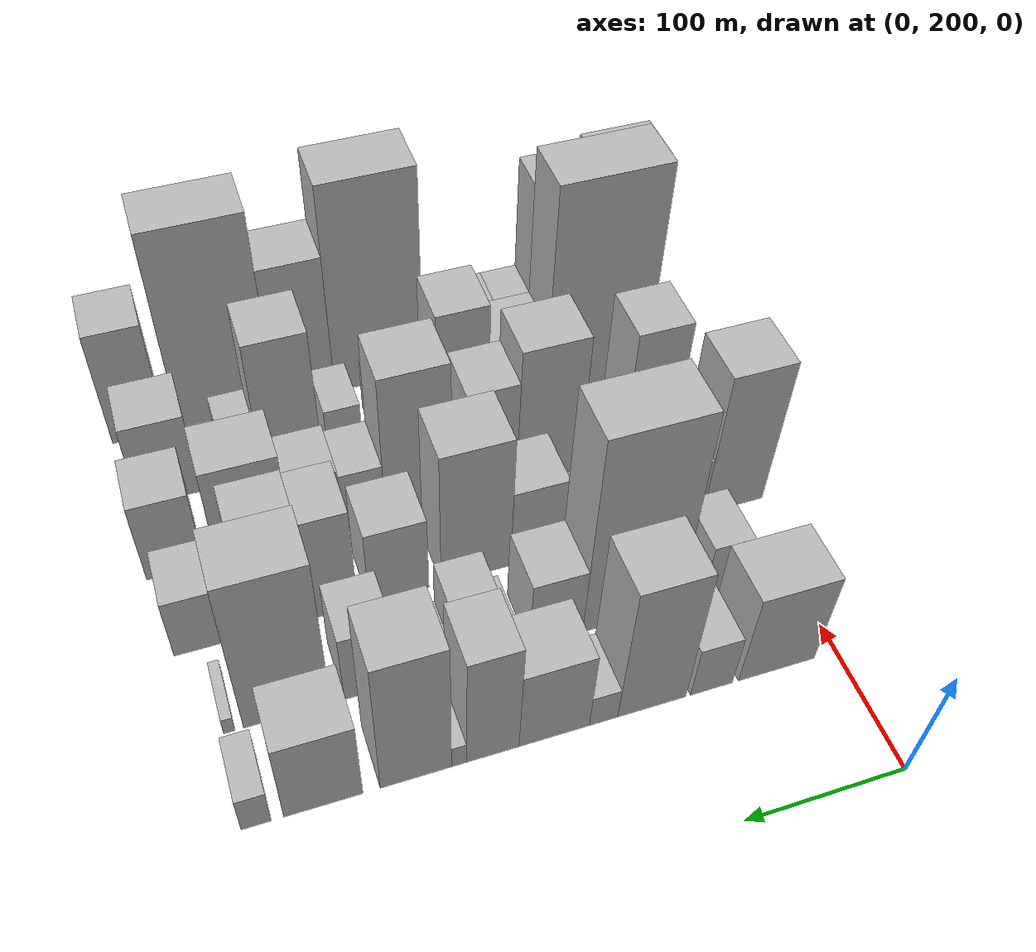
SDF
<sdf version="1.6">
 <world name="default">
  <model name="building_31">
   <static>1</static>
   <pose>100.0000 239.9030 0 0.000000 0.000000 0.000000</pose>
   <link name="link">
    <pose>0 0 42.00 0 0 0</pose>
    <collision name="collision"><geometry><box><size>40.0000 50.0657 84.0000</size></box></geometry></collision>
    <visual name="visual">
     <cast_shadows>0</cast_shadows>
     <geometry><box><size>40.0000 50.0657 84.0000</size></box></geometry>
     <material>
      <script>
       <uri>model://HANNAS_wall/materials/scripts</uri>
       <uri>model://HANNAS_wall/materials/textures</uri>
       <name>vrc/HANNAS_wall</name>
      </script>
     </material>
    </visual>
   </link>
  </model>
  <model name="building_32">
   <static>1</static>
   <pose>100.0000 282.4379 0 0.000000 0.000000 0.000000</pose>
   <link name="link">
    <pose>0 0 24.00 0 0 0</pose>
    <collision name="collision"><geometry><box><size>40.0000 27.0040 48.0000</size></box></geometry></collision>
    <visual name="visual">
     <cast_shadows>0</cast_shadows>
     <geometry><box><size>40.0000 27.0040 48.0000</size></box></geometry>
     <material>
      <script>
       <uri>model://HANNAS_wall/materials/scripts</uri>
       <uri>model://HANNAS_wall/materials/textures</uri>
       <name>vrc/HANNAS_wall</name>
      </script>
     </material>
    </visual>
   </link>
  </model>
  <model name="building_33">
   <static>1</static>
   <pose>100.0000 320.5855 0 0.000000 0.000000 0.000000</pose>
   <link name="link">
    <pose>0 0 63.00 0 0 0</pose>
    <collision name="collision"><geometry><box><size>40.0000 43.2914 126.0000</size></box></geometry></collision>
    <visual name="visual">
     <cast_shadows>0</cast_shadows>
     <geometry><box><size>40.0000 43.2914 126.0000</size></box></geometry>
     <material>
      <script>
       <uri>model://HANNAS_wall/materials/scripts</uri>
       <uri>model://HANNAS_wall/materials/textures</uri>
       <name>vrc/HANNAS_wall</name>
      </script>
     </material>
    </visual>
   </link>
  </model>
  <model name="building_34">
   <static>1</static>
   <pose>100.0000 351.0756 0 0.000000 0.000000 0.000000</pose>
   <link name="link">
    <pose>0 0 15.00 0 0 0</pose>
    <collision name="collision"><geometry><box><size>40.0000 17.6887 30.0000</size></box></geometry></collision>
    <visual name="visual">
     <cast_shadows>0</cast_shadows>
     <geometry><box><size>40.0000 17.6887 30.0000</size></box></geometry>
     <material>
      <script>
       <uri>model://HANNAS_wall/materials/scripts</uri>
       <uri>model://HANNAS_wall/materials/textures</uri>
       <name>vrc/HANNAS_wall</name>
      </script>
     </material>
    </visual>
   </link>
  </model>
  <model name="building_35">
   <static>1</static>
   <pose>100.0000 381.4709 0 0.000000 0.000000 0.000000</pose>
   <link name="link">
    <pose>0 0 37.50 0 0 0</pose>
    <collision name="collision"><geometry><box><size>40.0000 43.1019 75.0000</size></box></geometry></collision>
    <visual name="visual">
     <cast_shadows>0</cast_shadows>
     <geometry><box><size>40.0000 43.1019 75.0000</size></box></geometry>
     <material>
      <script>
       <uri>model://HANNAS_wall/materials/scripts</uri>
       <uri>model://HANNAS_wall/materials/textures</uri>
       <name>vrc/HANNAS_wall</name>
      </script>
     </material>
    </visual>
   </link>
  </model>
  <model name="building_36">
   <static>1</static>
   <pose>100.0000 418.7863 0 0.000000 0.000000 0.000000</pose>
   <link name="link">
    <pose>0 0 52.50 0 0 0</pose>
    <collision name="collision"><geometry><box><size>40.0000 31.5288 105.0000</size></box></geometry></collision>
    <visual name="visual">
     <cast_shadows>0</cast_shadows>
     <geometry><box><size>40.0000 31.5288 105.0000</size></box></geometry>
     <material>
      <script>
       <uri>model://HANNAS_wall/materials/scripts</uri>
       <uri>model://HANNAS_wall/materials/textures</uri>
       <name>vrc/HANNAS_wall</name>
      </script>
     </material>
    </visual>
   </link>
  </model>
  <model name="building_37">
   <static>1</static>
   <pose>100.0000 438.9979 0 0.000000 0.000000 0.000000</pose>
   <link name="link">
    <pose>0 0 10.50 0 0 0</pose>
    <collision name="collision"><geometry><box><size>40.0000 8.8945 21.0000</size></box></geometry></collision>
    <visual name="visual">
     <cast_shadows>0</cast_shadows>
     <geometry><box><size>40.0000 8.8945 21.0000</size></box></geometry>
     <material>
      <script>
       <uri>model://HANNAS_wall/materials/scripts</uri>
       <uri>model://HANNAS_wall/materials/textures</uri>
       <name>vrc/HANNAS_wall</name>
      </script>
     </material>
    </visual>
   </link>
  </model>
  <model name="building_38">
   <static>1</static>
   <pose>100.0000 464.3143 0 0.000000 0.000000 0.000000</pose>
   <link name="link">
    <pose>0 0 63.00 0 0 0</pose>
    <collision name="collision"><geometry><box><size>40.0000 41.7383 126.0000</size></box></geometry></collision>
    <visual name="visual">
     <cast_shadows>0</cast_shadows>
     <geometry><box><size>40.0000 41.7383 126.0000</size></box></geometry>
     <material>
      <script>
       <uri>model://HANNAS_wall/materials/scripts</uri>
       <uri>model://HANNAS_wall/materials/textures</uri>
       <name>vrc/HANNAS_wall</name>
      </script>
     </material>
    </visual>
   </link>
  </model>
  <model name="building_39">
   <static>1</static>
   <pose>100.0000 517.6695 0 0.000000 0.000000 0.000000</pose>
   <link name="link">
    <pose>0 0 37.50 0 0 0</pose>
    <collision name="collision"><geometry><box><size>40.0000 44.9721 75.0000</size></box></geometry></collision>
    <visual name="visual">
     <cast_shadows>0</cast_shadows>
     <geometry><box><size>40.0000 44.9721 75.0000</size></box></geometry>
     <material>
      <script>
       <uri>model://HANNAS_wall/materials/scripts</uri>
       <uri>model://HANNAS_wall/materials/textures</uri>
       <name>vrc/HANNAS_wall</name>
      </script>
     </material>
    </visual>
   </link>
  </model>
  <model name="building_40">
   <static>1</static>
   <pose>100.0000 555.5803 0 0.000000 0.000000 0.000000</pose>
   <link name="link">
    <pose>0 0 16.50 0 0 0</pose>
    <collision name="collision"><geometry><box><size>40.0000 16.8495 33.0000</size></box></geometry></collision>
    <visual name="visual">
     <cast_shadows>0</cast_shadows>
     <geometry><box><size>40.0000 16.8495 33.0000</size></box></geometry>
     <material>
      <script>
       <uri>model://HANNAS_wall/materials/scripts</uri>
       <uri>model://HANNAS_wall/materials/textures</uri>
       <name>vrc/HANNAS_wall</name>
      </script>
     </material>
    </visual>
   </link>
  </model>
  <model name="building_89">
   <static>1</static>
   <pose>160.0000 221.8760 0 0.000000 0.000000 0.000000</pose>
   <link name="link">
    <pose>0 0 9.00 0 0 0</pose>
    <collision name="collision"><geometry><box><size>40.0000 7.3442 18.0000</size></box></geometry></collision>
    <visual name="visual">
     <cast_shadows>0</cast_shadows>
     <geometry><box><size>40.0000 7.3442 18.0000</size></box></geometry>
     <material>
      <script>
       <uri>model://HANNAS_wall/materials/scripts</uri>
       <uri>model://HANNAS_wall/materials/textures</uri>
       <name>vrc/HANNAS_wall</name>
      </script>
     </material>
    </visual>
   </link>
  </model>
  <model name="building_90">
   <static>1</static>
   <pose>160.0000 246.0580 0 0.000000 0.000000 0.000000</pose>
   <link name="link">
    <pose>0 0 25.50 0 0 0</pose>
    <collision name="collision"><geometry><box><size>40.0000 27.0197 51.0000</size></box></geometry></collision>
    <visual name="visual">
     <cast_shadows>0</cast_shadows>
     <geometry><box><size>40.0000 27.0197 51.0000</size></box></geometry>
     <material>
      <script>
       <uri>model://HANNAS_wall/materials/scripts</uri>
       <uri>model://HANNAS_wall/materials/textures</uri>
       <name>vrc/HANNAS_wall</name>
      </script>
     </material>
    </visual>
   </link>
  </model>
  <model name="building_91">
   <static>1</static>
   <pose>160.0000 267.3985 0 0.000000 0.000000 0.000000</pose>
   <link name="link">
    <pose>0 0 9.00 0 0 0</pose>
    <collision name="collision"><geometry><box><size>40.0000 7.6613 18.0000</size></box></geometry></collision>
    <visual name="visual">
     <cast_shadows>0</cast_shadows>
     <geometry><box><size>40.0000 7.6613 18.0000</size></box></geometry>
     <material>
      <script>
       <uri>model://HANNAS_wall/materials/scripts</uri>
       <uri>model://HANNAS_wall/materials/textures</uri>
       <name>vrc/HANNAS_wall</name>
      </script>
     </material>
    </visual>
   </link>
  </model>
  <model name="building_92">
   <static>1</static>
   <pose>160.0000 308.3316 0 0.000000 0.000000 0.000000</pose>
   <link name="link">
    <pose>0 0 90.00 0 0 0</pose>
    <collision name="collision"><geometry><box><size>40.0000 64.2050 180.0000</size></box></geometry></collision>
    <visual name="visual">
     <cast_shadows>0</cast_shadows>
     <geometry><box><size>40.0000 64.2050 180.0000</size></box></geometry>
     <material>
      <script>
       <uri>model://HANNAS_wall/materials/scripts</uri>
       <uri>model://HANNAS_wall/materials/textures</uri>
       <name>vrc/HANNAS_wall</name>
      </script>
     </material>
    </visual>
   </link>
  </model>
  <model name="building_93">
   <static>1</static>
   <pose>160.0000 357.6886 0 0.000000 0.000000 0.000000</pose>
   <link name="link">
    <pose>0 0 31.50 0 0 0</pose>
    <collision name="collision"><geometry><box><size>40.0000 34.5089 63.0000</size></box></geometry></collision>
    <visual name="visual">
     <cast_shadows>0</cast_shadows>
     <geometry><box><size>40.0000 34.5089 63.0000</size></box></geometry>
     <material>
      <script>
       <uri>model://HANNAS_wall/materials/scripts</uri>
       <uri>model://HANNAS_wall/materials/textures</uri>
       <name>vrc/HANNAS_wall</name>
      </script>
     </material>
    </visual>
   </link>
  </model>
  <model name="building_94">
   <static>1</static>
   <pose>160.0000 387.1038 0 0.000000 0.000000 0.000000</pose>
   <link name="link">
    <pose>0 0 12.00 0 0 0</pose>
    <collision name="collision"><geometry><box><size>40.0000 10.3215 24.0000</size></box></geometry></collision>
    <visual name="visual">
     <cast_shadows>0</cast_shadows>
     <geometry><box><size>40.0000 10.3215 24.0000</size></box></geometry>
     <material>
      <script>
       <uri>model://HANNAS_wall/materials/scripts</uri>
       <uri>model://HANNAS_wall/materials/textures</uri>
       <name>vrc/HANNAS_wall</name>
      </script>
     </material>
    </visual>
   </link>
  </model>
  <model name="building_95">
   <static>1</static>
   <pose>160.0000 407.3738 0 0.000000 0.000000 0.000000</pose>
   <link name="link">
    <pose>0 0 27.00 0 0 0</pose>
    <collision name="collision"><geometry><box><size>40.0000 30.2186 54.0000</size></box></geometry></collision>
    <visual name="visual">
     <cast_shadows>0</cast_shadows>
     <geometry><box><size>40.0000 30.2186 54.0000</size></box></geometry>
     <material>
      <script>
       <uri>model://HANNAS_wall/materials/scripts</uri>
       <uri>model://HANNAS_wall/materials/textures</uri>
       <name>vrc/HANNAS_wall</name>
      </script>
     </material>
    </visual>
   </link>
  </model>
  <model name="building_96">
   <static>1</static>
   <pose>160.0000 426.1069 0 0.000000 0.000000 0.000000</pose>
   <link name="link">
    <pose>0 0 7.50 0 0 0</pose>
    <collision name="collision"><geometry><box><size>40.0000 7.2475 15.0000</size></box></geometry></collision>
    <visual name="visual">
     <cast_shadows>0</cast_shadows>
     <geometry><box><size>40.0000 7.2475 15.0000</size></box></geometry>
     <material>
      <script>
       <uri>model://HANNAS_wall/materials/scripts</uri>
       <uri>model://HANNAS_wall/materials/textures</uri>
       <name>vrc/HANNAS_wall</name>
      </script>
     </material>
    </visual>
   </link>
  </model>
  <model name="building_97">
   <static>1</static>
   <pose>160.0000 434.0408 0 0.000000 0.000000 0.000000</pose>
   <link name="link">
    <pose>0 0 10.50 0 0 0</pose>
    <collision name="collision"><geometry><box><size>40.0000 8.6204 21.0000</size></box></geometry></collision>
    <visual name="visual">
     <cast_shadows>0</cast_shadows>
     <geometry><box><size>40.0000 8.6204 21.0000</size></box></geometry>
     <material>
      <script>
       <uri>model://HANNAS_wall/materials/scripts</uri>
       <uri>model://HANNAS_wall/materials/textures</uri>
       <name>vrc/HANNAS_wall</name>
      </script>
     </material>
    </visual>
   </link>
  </model>
  <model name="building_98">
   <static>1</static>
   <pose>160.0000 448.1103 0 0.000000 0.000000 0.000000</pose>
   <link name="link">
    <pose>0 0 16.50 0 0 0</pose>
    <collision name="collision"><geometry><box><size>40.0000 19.5187 33.0000</size></box></geometry></collision>
    <visual name="visual">
     <cast_shadows>0</cast_shadows>
     <geometry><box><size>40.0000 19.5187 33.0000</size></box></geometry>
     <material>
      <script>
       <uri>model://HANNAS_wall/materials/scripts</uri>
       <uri>model://HANNAS_wall/materials/textures</uri>
       <name>vrc/HANNAS_wall</name>
      </script>
     </material>
    </visual>
   </link>
  </model>
  <model name="building_99">
   <static>1</static>
   <pose>160.0000 474.0867 0 0.000000 0.000000 0.000000</pose>
   <link name="link">
    <pose>0 0 31.50 0 0 0</pose>
    <collision name="collision"><geometry><box><size>40.0000 32.4342 63.0000</size></box></geometry></collision>
    <visual name="visual">
     <cast_shadows>0</cast_shadows>
     <geometry><box><size>40.0000 32.4342 63.0000</size></box></geometry>
     <material>
      <script>
       <uri>model://HANNAS_wall/materials/scripts</uri>
       <uri>model://HANNAS_wall/materials/textures</uri>
       <name>vrc/HANNAS_wall</name>
      </script>
     </material>
    </visual>
   </link>
  </model>
  <model name="building_100">
   <static>1</static>
   <pose>160.0000 524.2451 0 0.000000 0.000000 0.000000</pose>
   <link name="link">
    <pose>0 0 70.50 0 0 0</pose>
    <collision name="collision"><geometry><box><size>40.0000 51.8826 141.0000</size></box></geometry></collision>
    <visual name="visual">
     <cast_shadows>0</cast_shadows>
     <geometry><box><size>40.0000 51.8826 141.0000</size></box></geometry>
     <material>
      <script>
       <uri>model://HANNAS_wall/materials/scripts</uri>
       <uri>model://HANNAS_wall/materials/textures</uri>
       <name>vrc/HANNAS_wall</name>
      </script>
     </material>
    </visual>
   </link>
  </model>
  <model name="building_101">
   <static>1</static>
   <pose>160.0000 558.5130 0 0.000000 0.000000 0.000000</pose>
   <link name="link">
    <pose>0 0 7.50 0 0 0</pose>
    <collision name="collision"><geometry><box><size>40.0000 6.6532 15.0000</size></box></geometry></collision>
    <visual name="visual">
     <cast_shadows>0</cast_shadows>
     <geometry><box><size>40.0000 6.6532 15.0000</size></box></geometry>
     <material>
      <script>
       <uri>model://HANNAS_wall/materials/scripts</uri>
       <uri>model://HANNAS_wall/materials/textures</uri>
       <name>vrc/HANNAS_wall</name>
      </script>
     </material>
    </visual>
   </link>
  </model>
  <model name="building_149">
   <static>1</static>
   <pose>220.0000 210.6465 0 0.000000 0.000000 0.000000</pose>
   <link name="link">
    <pose>0 0 64.50 0 0 0</pose>
    <collision name="collision"><geometry><box><size>40.0000 42.6989 129.0000</size></box></geometry></collision>
    <visual name="visual">
     <cast_shadows>0</cast_shadows>
     <geometry><box><size>40.0000 42.6989 129.0000</size></box></geometry>
     <material>
      <script>
       <uri>model://HANNAS_wall/materials/scripts</uri>
       <uri>model://HANNAS_wall/materials/textures</uri>
       <name>vrc/HANNAS_wall</name>
      </script>
     </material>
    </visual>
   </link>
  </model>
  <model name="building_150">
   <static>1</static>
   <pose>220.0000 248.0326 0 0.000000 0.000000 0.000000</pose>
   <link name="link">
    <pose>0 0 27.00 0 0 0</pose>
    <collision name="collision"><geometry><box><size>40.0000 32.0732 54.0000</size></box></geometry></collision>
    <visual name="visual">
     <cast_shadows>0</cast_shadows>
     <geometry><box><size>40.0000 32.0732 54.0000</size></box></geometry>
     <material>
      <script>
       <uri>model://HANNAS_wall/materials/scripts</uri>
       <uri>model://HANNAS_wall/materials/textures</uri>
       <name>vrc/HANNAS_wall</name>
      </script>
     </material>
    </visual>
   </link>
  </model>
  <model name="building_151">
   <static>1</static>
   <pose>220.0000 288.9795 0 0.000000 0.000000 0.000000</pose>
   <link name="link">
    <pose>0 0 28.50 0 0 0</pose>
    <collision name="collision"><geometry><box><size>40.0000 33.8206 57.0000</size></box></geometry></collision>
    <visual name="visual">
     <cast_shadows>0</cast_shadows>
     <geometry><box><size>40.0000 33.8206 57.0000</size></box></geometry>
     <material>
      <script>
       <uri>model://HANNAS_wall/materials/scripts</uri>
       <uri>model://HANNAS_wall/materials/textures</uri>
       <name>vrc/HANNAS_wall</name>
      </script>
     </material>
    </visual>
   </link>
  </model>
  <model name="building_152">
   <static>1</static>
   <pose>220.0000 321.6605 0 0.000000 0.000000 0.000000</pose>
   <link name="link">
    <pose>0 0 15.00 0 0 0</pose>
    <collision name="collision"><geometry><box><size>40.0000 15.5413 30.0000</size></box></geometry></collision>
    <visual name="visual">
     <cast_shadows>0</cast_shadows>
     <geometry><box><size>40.0000 15.5413 30.0000</size></box></geometry>
     <material>
      <script>
       <uri>model://HANNAS_wall/materials/scripts</uri>
       <uri>model://HANNAS_wall/materials/textures</uri>
       <name>vrc/HANNAS_wall</name>
      </script>
     </material>
    </visual>
   </link>
  </model>
  <model name="building_153">
   <static>1</static>
   <pose>220.0000 347.6059 0 0.000000 0.000000 0.000000</pose>
   <link name="link">
    <pose>0 0 36.00 0 0 0</pose>
    <collision name="collision"><geometry><box><size>40.0000 36.3496 72.0000</size></box></geometry></collision>
    <visual name="visual">
     <cast_shadows>0</cast_shadows>
     <geometry><box><size>40.0000 36.3496 72.0000</size></box></geometry>
     <material>
      <script>
       <uri>model://HANNAS_wall/materials/scripts</uri>
       <uri>model://HANNAS_wall/materials/textures</uri>
       <name>vrc/HANNAS_wall</name>
      </script>
     </material>
    </visual>
   </link>
  </model>
  <model name="building_154">
   <static>1</static>
   <pose>220.0000 388.8734 0 0.000000 0.000000 0.000000</pose>
   <link name="link">
    <pose>0 0 61.50 0 0 0</pose>
    <collision name="collision"><geometry><box><size>40.0000 46.1854 123.0000</size></box></geometry></collision>
    <visual name="visual">
     <cast_shadows>0</cast_shadows>
     <geometry><box><size>40.0000 46.1854 123.0000</size></box></geometry>
     <material>
      <script>
       <uri>model://HANNAS_wall/materials/scripts</uri>
       <uri>model://HANNAS_wall/materials/textures</uri>
       <name>vrc/HANNAS_wall</name>
      </script>
     </material>
    </visual>
   </link>
  </model>
  <model name="building_155">
   <static>1</static>
   <pose>220.0000 439.4248 0 0.000000 0.000000 0.000000</pose>
   <link name="link">
    <pose>0 0 34.50 0 0 0</pose>
    <collision name="collision"><geometry><box><size>40.0000 38.9174 69.0000</size></box></geometry></collision>
    <visual name="visual">
     <cast_shadows>0</cast_shadows>
     <geometry><box><size>40.0000 38.9174 69.0000</size></box></geometry>
     <material>
      <script>
       <uri>model://HANNAS_wall/materials/scripts</uri>
       <uri>model://HANNAS_wall/materials/textures</uri>
       <name>vrc/HANNAS_wall</name>
      </script>
     </material>
    </visual>
   </link>
  </model>
  <model name="building_156">
   <static>1</static>
   <pose>220.0000 480.9396 0 0.000000 0.000000 0.000000</pose>
   <link name="link">
    <pose>0 0 48.00 0 0 0</pose>
    <collision name="collision"><geometry><box><size>40.0000 30.1122 96.0000</size></box></geometry></collision>
    <visual name="visual">
     <cast_shadows>0</cast_shadows>
     <geometry><box><size>40.0000 30.1122 96.0000</size></box></geometry>
     <material>
      <script>
       <uri>model://HANNAS_wall/materials/scripts</uri>
       <uri>model://HANNAS_wall/materials/textures</uri>
       <name>vrc/HANNAS_wall</name>
      </script>
     </material>
    </visual>
   </link>
  </model>
  <model name="building_157">
   <static>1</static>
   <pose>220.0000 515.1963 0 0.000000 0.000000 0.000000</pose>
   <link name="link">
    <pose>0 0 49.50 0 0 0</pose>
    <collision name="collision"><geometry><box><size>40.0000 38.4012 99.0000</size></box></geometry></collision>
    <visual name="visual">
     <cast_shadows>0</cast_shadows>
     <geometry><box><size>40.0000 38.4012 99.0000</size></box></geometry>
     <material>
      <script>
       <uri>model://HANNAS_wall/materials/scripts</uri>
       <uri>model://HANNAS_wall/materials/textures</uri>
       <name>vrc/HANNAS_wall</name>
      </script>
     </material>
    </visual>
   </link>
  </model>
  <model name="building_158">
   <static>1</static>
   <pose>220.0000 540.1635 0 0.000000 0.000000 0.000000</pose>
   <link name="link">
    <pose>0 0 13.50 0 0 0</pose>
    <collision name="collision"><geometry><box><size>40.0000 11.5331 27.0000</size></box></geometry></collision>
    <visual name="visual">
     <cast_shadows>0</cast_shadows>
     <geometry><box><size>40.0000 11.5331 27.0000</size></box></geometry>
     <material>
      <script>
       <uri>model://HANNAS_wall/materials/scripts</uri>
       <uri>model://HANNAS_wall/materials/textures</uri>
       <name>vrc/HANNAS_wall</name>
      </script>
     </material>
    </visual>
   </link>
  </model>
  <model name="building_159">
   <static>1</static>
   <pose>220.0000 565.5804 0 0.000000 0.000000 0.000000</pose>
   <link name="link">
    <pose>0 0 27.00 0 0 0</pose>
    <collision name="collision"><geometry><box><size>40.0000 29.3006 54.0000</size></box></geometry></collision>
    <visual name="visual">
     <cast_shadows>0</cast_shadows>
     <geometry><box><size>40.0000 29.3006 54.0000</size></box></geometry>
     <material>
      <script>
       <uri>model://HANNAS_wall/materials/scripts</uri>
       <uri>model://HANNAS_wall/materials/textures</uri>
       <name>vrc/HANNAS_wall</name>
      </script>
     </material>
    </visual>
   </link>
  </model>
  <model name="building_200">
   <static>1</static>
   <pose>280.0000 222.1697 0 0.000000 0.000000 0.000000</pose>
   <link name="link">
    <pose>0 0 10.50 0 0 0</pose>
    <collision name="collision"><geometry><box><size>40.0000 9.4466 21.0000</size></box></geometry></collision>
    <visual name="visual">
     <cast_shadows>0</cast_shadows>
     <geometry><box><size>40.0000 9.4466 21.0000</size></box></geometry>
     <material>
      <script>
       <uri>model://HANNAS_wall/materials/scripts</uri>
       <uri>model://HANNAS_wall/materials/textures</uri>
       <name>vrc/HANNAS_wall</name>
      </script>
     </material>
    </visual>
   </link>
  </model>
  <model name="building_201">
   <static>1</static>
   <pose>280.0000 245.6310 0 0.000000 0.000000 0.000000</pose>
   <link name="link">
    <pose>0 0 58.50 0 0 0</pose>
    <collision name="collision"><geometry><box><size>40.0000 37.4759 117.0000</size></box></geometry></collision>
    <visual name="visual">
     <cast_shadows>0</cast_shadows>
     <geometry><box><size>40.0000 37.4759 117.0000</size></box></geometry>
     <material>
      <script>
       <uri>model://HANNAS_wall/materials/scripts</uri>
       <uri>model://HANNAS_wall/materials/textures</uri>
       <name>vrc/HANNAS_wall</name>
      </script>
     </material>
    </visual>
   </link>
  </model>
  <model name="building_202">
   <static>1</static>
   <pose>280.0000 270.2227 0 0.000000 0.000000 0.000000</pose>
   <link name="link">
    <pose>0 0 12.00 0 0 0</pose>
    <collision name="collision"><geometry><box><size>40.0000 11.7076 24.0000</size></box></geometry></collision>
    <visual name="visual">
     <cast_shadows>0</cast_shadows>
     <geometry><box><size>40.0000 11.7076 24.0000</size></box></geometry>
     <material>
      <script>
       <uri>model://HANNAS_wall/materials/scripts</uri>
       <uri>model://HANNAS_wall/materials/textures</uri>
       <name>vrc/HANNAS_wall</name>
      </script>
     </material>
    </visual>
   </link>
  </model>
  <model name="building_203">
   <static>1</static>
   <pose>280.0000 281.7889 0 0.000000 0.000000 0.000000</pose>
   <link name="link">
    <pose>0 0 12.00 0 0 0</pose>
    <collision name="collision"><geometry><box><size>40.0000 11.4247 24.0000</size></box></geometry></collision>
    <visual name="visual">
     <cast_shadows>0</cast_shadows>
     <geometry><box><size>40.0000 11.4247 24.0000</size></box></geometry>
     <material>
      <script>
       <uri>model://HANNAS_wall/materials/scripts</uri>
       <uri>model://HANNAS_wall/materials/textures</uri>
       <name>vrc/HANNAS_wall</name>
      </script>
     </material>
    </visual>
   </link>
  </model>
  <model name="building_204">
   <static>1</static>
   <pose>280.0000 318.1011 0 0.000000 0.000000 0.000000</pose>
   <link name="link">
    <pose>0 0 63.00 0 0 0</pose>
    <collision name="collision"><geometry><box><size>40.0000 45.1996 126.0000</size></box></geometry></collision>
    <visual name="visual">
     <cast_shadows>0</cast_shadows>
     <geometry><box><size>40.0000 45.1996 126.0000</size></box></geometry>
     <material>
      <script>
       <uri>model://HANNAS_wall/materials/scripts</uri>
       <uri>model://HANNAS_wall/materials/textures</uri>
       <name>vrc/HANNAS_wall</name>
      </script>
     </material>
    </visual>
   </link>
  </model>
  <model name="building_205">
   <static>1</static>
   <pose>280.0000 358.1148 0 0.000000 0.000000 0.000000</pose>
   <link name="link">
    <pose>0 0 49.50 0 0 0</pose>
    <collision name="collision"><geometry><box><size>40.0000 34.8279 99.0000</size></box></geometry></collision>
    <visual name="visual">
     <cast_shadows>0</cast_shadows>
     <geometry><box><size>40.0000 34.8279 99.0000</size></box></geometry>
     <material>
      <script>
       <uri>model://HANNAS_wall/materials/scripts</uri>
       <uri>model://HANNAS_wall/materials/textures</uri>
       <name>vrc/HANNAS_wall</name>
      </script>
     </material>
    </visual>
   </link>
  </model>
  <model name="building_206">
   <static>1</static>
   <pose>280.0000 408.3843 0 0.000000 0.000000 0.000000</pose>
   <link name="link">
    <pose>0 0 66.00 0 0 0</pose>
    <collision name="collision"><geometry><box><size>40.0000 45.7112 132.0000</size></box></geometry></collision>
    <visual name="visual">
     <cast_shadows>0</cast_shadows>
     <geometry><box><size>40.0000 45.7112 132.0000</size></box></geometry>
     <material>
      <script>
       <uri>model://HANNAS_wall/materials/scripts</uri>
       <uri>model://HANNAS_wall/materials/textures</uri>
       <name>vrc/HANNAS_wall</name>
      </script>
     </material>
    </visual>
   </link>
  </model>
  <model name="building_207">
   <static>1</static>
   <pose>280.0000 445.4644 0 0.000000 0.000000 0.000000</pose>
   <link name="link">
    <pose>0 0 27.00 0 0 0</pose>
    <collision name="collision"><geometry><box><size>40.0000 28.4489 54.0000</size></box></geometry></collision>
    <visual name="visual">
     <cast_shadows>0</cast_shadows>
     <geometry><box><size>40.0000 28.4489 54.0000</size></box></geometry>
     <material>
      <script>
       <uri>model://HANNAS_wall/materials/scripts</uri>
       <uri>model://HANNAS_wall/materials/textures</uri>
       <name>vrc/HANNAS_wall</name>
      </script>
     </material>
    </visual>
   </link>
  </model>
  <model name="building_208">
   <static>1</static>
   <pose>280.0000 476.7838 0 0.000000 0.000000 0.000000</pose>
   <link name="link">
    <pose>0 0 30.00 0 0 0</pose>
    <collision name="collision"><geometry><box><size>40.0000 34.1899 60.0000</size></box></geometry></collision>
    <visual name="visual">
     <cast_shadows>0</cast_shadows>
     <geometry><box><size>40.0000 34.1899 60.0000</size></box></geometry>
     <material>
      <script>
       <uri>model://HANNAS_wall/materials/scripts</uri>
       <uri>model://HANNAS_wall/materials/textures</uri>
       <name>vrc/HANNAS_wall</name>
      </script>
     </material>
    </visual>
   </link>
  </model>
  <model name="building_209">
   <static>1</static>
   <pose>280.0000 518.1580 0 0.000000 0.000000 0.000000</pose>
   <link name="link">
    <pose>0 0 43.50 0 0 0</pose>
    <collision name="collision"><geometry><box><size>40.0000 48.5585 87.0000</size></box></geometry></collision>
    <visual name="visual">
     <cast_shadows>0</cast_shadows>
     <geometry><box><size>40.0000 48.5585 87.0000</size></box></geometry>
     <material>
      <script>
       <uri>model://HANNAS_wall/materials/scripts</uri>
       <uri>model://HANNAS_wall/materials/textures</uri>
       <name>vrc/HANNAS_wall</name>
      </script>
     </material>
    </visual>
   </link>
  </model>
  <model name="building_210">
   <static>1</static>
   <pose>280.0000 568.8109 0 0.000000 0.000000 0.000000</pose>
   <link name="link">
    <pose>0 0 36.00 0 0 0</pose>
    <collision name="collision"><geometry><box><size>40.0000 36.7473 72.0000</size></box></geometry></collision>
    <visual name="visual">
     <cast_shadows>0</cast_shadows>
     <geometry><box><size>40.0000 36.7473 72.0000</size></box></geometry>
     <material>
      <script>
       <uri>model://HANNAS_wall/materials/scripts</uri>
       <uri>model://HANNAS_wall/materials/textures</uri>
       <name>vrc/HANNAS_wall</name>
      </script>
     </material>
    </visual>
   </link>
  </model>
  <model name="building_260">
   <static>1</static>
   <pose>340.0000 207.3594 0 0.000000 0.000000 0.000000</pose>
   <link name="link">
    <pose>0 0 15.00 0 0 0</pose>
    <collision name="collision"><geometry><box><size>40.0000 15.2614 30.0000</size></box></geometry></collision>
    <visual name="visual">
     <cast_shadows>0</cast_shadows>
     <geometry><box><size>40.0000 15.2614 30.0000</size></box></geometry>
     <material>
      <script>
       <uri>model://HANNAS_wall/materials/scripts</uri>
       <uri>model://HANNAS_wall/materials/textures</uri>
       <name>vrc/HANNAS_wall</name>
      </script>
     </material>
    </visual>
   </link>
  </model>
  <model name="building_261">
   <static>1</static>
   <pose>340.0000 260.7293 0 0.000000 0.000000 0.000000</pose>
   <link name="link">
    <pose>0 0 97.50 0 0 0</pose>
    <collision name="collision"><geometry><box><size>40.0000 75.4783 195.0000</size></box></geometry></collision>
    <visual name="visual">
     <cast_shadows>0</cast_shadows>
     <geometry><box><size>40.0000 75.4783 195.0000</size></box></geometry>
     <material>
      <script>
       <uri>model://HANNAS_wall/materials/scripts</uri>
       <uri>model://HANNAS_wall/materials/textures</uri>
       <name>vrc/HANNAS_wall</name>
      </script>
     </material>
    </visual>
   </link>
  </model>
  <model name="building_262">
   <static>1</static>
   <pose>340.0000 319.3008 0 0.000000 0.000000 0.000000</pose>
   <link name="link">
    <pose>0 0 37.50 0 0 0</pose>
    <collision name="collision"><geometry><box><size>40.0000 41.6646 75.0000</size></box></geometry></collision>
    <visual name="visual">
     <cast_shadows>0</cast_shadows>
     <geometry><box><size>40.0000 41.6646 75.0000</size></box></geometry>
     <material>
      <script>
       <uri>model://HANNAS_wall/materials/scripts</uri>
       <uri>model://HANNAS_wall/materials/textures</uri>
       <name>vrc/HANNAS_wall</name>
      </script>
     </material>
    </visual>
   </link>
  </model>
  <model name="building_263">
   <static>1</static>
   <pose>340.0000 358.6591 0 0.000000 0.000000 0.000000</pose>
   <link name="link">
    <pose>0 0 55.50 0 0 0</pose>
    <collision name="collision"><geometry><box><size>40.0000 37.0520 111.0000</size></box></geometry></collision>
    <visual name="visual">
     <cast_shadows>0</cast_shadows>
     <geometry><box><size>40.0000 37.0520 111.0000</size></box></geometry>
     <material>
      <script>
       <uri>model://HANNAS_wall/materials/scripts</uri>
       <uri>model://HANNAS_wall/materials/textures</uri>
       <name>vrc/HANNAS_wall</name>
      </script>
     </material>
    </visual>
   </link>
  </model>
  <model name="building_264">
   <static>1</static>
   <pose>340.0000 384.7673 0 0.000000 0.000000 0.000000</pose>
   <link name="link">
    <pose>0 0 15.00 0 0 0</pose>
    <collision name="collision"><geometry><box><size>40.0000 15.1644 30.0000</size></box></geometry></collision>
    <visual name="visual">
     <cast_shadows>0</cast_shadows>
     <geometry><box><size>40.0000 15.1644 30.0000</size></box></geometry>
     <material>
      <script>
       <uri>model://HANNAS_wall/materials/scripts</uri>
       <uri>model://HANNAS_wall/materials/textures</uri>
       <name>vrc/HANNAS_wall</name>
      </script>
     </material>
    </visual>
   </link>
  </model>
  <model name="building_265">
   <static>1</static>
   <pose>340.0000 406.1052 0 0.000000 0.000000 0.000000</pose>
   <link name="link">
    <pose>0 0 24.00 0 0 0</pose>
    <collision name="collision"><geometry><box><size>40.0000 27.5115 48.0000</size></box></geometry></collision>
    <visual name="visual">
     <cast_shadows>0</cast_shadows>
     <geometry><box><size>40.0000 27.5115 48.0000</size></box></geometry>
     <material>
      <script>
       <uri>model://HANNAS_wall/materials/scripts</uri>
       <uri>model://HANNAS_wall/materials/textures</uri>
       <name>vrc/HANNAS_wall</name>
      </script>
     </material>
    </visual>
   </link>
  </model>
  <model name="building_266">
   <static>1</static>
   <pose>340.0000 442.0676 0 0.000000 0.000000 0.000000</pose>
   <link name="link">
    <pose>0 0 24.00 0 0 0</pose>
    <collision name="collision"><geometry><box><size>40.0000 24.4134 48.0000</size></box></geometry></collision>
    <visual name="visual">
     <cast_shadows>0</cast_shadows>
     <geometry><box><size>40.0000 24.4134 48.0000</size></box></geometry>
     <material>
      <script>
       <uri>model://HANNAS_wall/materials/scripts</uri>
       <uri>model://HANNAS_wall/materials/textures</uri>
       <name>vrc/HANNAS_wall</name>
      </script>
     </material>
    </visual>
   </link>
  </model>
  <model name="building_267">
   <static>1</static>
   <pose>340.0000 478.9217 0 0.000000 0.000000 0.000000</pose>
   <link name="link">
    <pose>0 0 61.50 0 0 0</pose>
    <collision name="collision"><geometry><box><size>40.0000 41.2948 123.0000</size></box></geometry></collision>
    <visual name="visual">
     <cast_shadows>0</cast_shadows>
     <geometry><box><size>40.0000 41.2948 123.0000</size></box></geometry>
     <material>
      <script>
       <uri>model://HANNAS_wall/materials/scripts</uri>
       <uri>model://HANNAS_wall/materials/textures</uri>
       <name>vrc/HANNAS_wall</name>
      </script>
     </material>
    </visual>
   </link>
  </model>
  <model name="building_268">
   <static>1</static>
   <pose>340.0000 511.5509 0 0.000000 0.000000 0.000000</pose>
   <link name="link">
    <pose>0 0 22.50 0 0 0</pose>
    <collision name="collision"><geometry><box><size>40.0000 23.9636 45.0000</size></box></geometry></collision>
    <visual name="visual">
     <cast_shadows>0</cast_shadows>
     <geometry><box><size>40.0000 23.9636 45.0000</size></box></geometry>
     <material>
      <script>
       <uri>model://HANNAS_wall/materials/scripts</uri>
       <uri>model://HANNAS_wall/materials/textures</uri>
       <name>vrc/HANNAS_wall</name>
      </script>
     </material>
    </visual>
   </link>
  </model>
  <model name="building_269">
   <static>1</static>
   <pose>340.0000 527.7872 0 0.000000 0.000000 0.000000</pose>
   <link name="link">
    <pose>0 0 10.50 0 0 0</pose>
    <collision name="collision"><geometry><box><size>40.0000 8.5090 21.0000</size></box></geometry></collision>
    <visual name="visual">
     <cast_shadows>0</cast_shadows>
     <geometry><box><size>40.0000 8.5090 21.0000</size></box></geometry>
     <material>
      <script>
       <uri>model://HANNAS_wall/materials/scripts</uri>
       <uri>model://HANNAS_wall/materials/textures</uri>
       <name>vrc/HANNAS_wall</name>
      </script>
     </material>
    </visual>
   </link>
  </model>
  <model name="building_270">
   <static>1</static>
   <pose>340.0000 562.5574 0 0.000000 0.000000 0.000000</pose>
   <link name="link">
    <pose>0 0 37.50 0 0 0</pose>
    <collision name="collision"><geometry><box><size>40.0000 41.0314 75.0000</size></box></geometry></collision>
    <visual name="visual">
     <cast_shadows>0</cast_shadows>
     <geometry><box><size>40.0000 41.0314 75.0000</size></box></geometry>
     <material>
      <script>
       <uri>model://HANNAS_wall/materials/scripts</uri>
       <uri>model://HANNAS_wall/materials/textures</uri>
       <name>vrc/HANNAS_wall</name>
      </script>
     </material>
    </visual>
   </link>
  </model>
  <model name="building_313">
   <static>1</static>
   <pose>400.0000 217.9484 0 0.000000 0.000000 0.000000</pose>
   <link name="link">
    <pose>0 0 75.00 0 0 0</pose>
    <collision name="collision"><geometry><box><size>40.0000 50.3626 150.0000</size></box></geometry></collision>
    <visual name="visual">
     <cast_shadows>0</cast_shadows>
     <geometry><box><size>40.0000 50.3626 150.0000</size></box></geometry>
     <material>
      <script>
       <uri>model://HANNAS_wall/materials/scripts</uri>
       <uri>model://HANNAS_wall/materials/textures</uri>
       <name>vrc/HANNAS_wall</name>
      </script>
     </material>
    </visual>
   </link>
  </model>
  <model name="building_314">
   <static>1</static>
   <pose>400.0000 264.7132 0 0.000000 0.000000 0.000000</pose>
   <link name="link">
    <pose>0 0 70.50 0 0 0</pose>
    <collision name="collision"><geometry><box><size>40.0000 43.1669 141.0000</size></box></geometry></collision>
    <visual name="visual">
     <cast_shadows>0</cast_shadows>
     <geometry><box><size>40.0000 43.1669 141.0000</size></box></geometry>
     <material>
      <script>
       <uri>model://HANNAS_wall/materials/scripts</uri>
       <uri>model://HANNAS_wall/materials/textures</uri>
       <name>vrc/HANNAS_wall</name>
      </script>
     </material>
    </visual>
   </link>
  </model>
  <model name="building_315">
   <static>1</static>
   <pose>400.0000 299.7742 0 0.000000 0.000000 0.000000</pose>
   <link name="link">
    <pose>0 0 22.50 0 0 0</pose>
    <collision name="collision"><geometry><box><size>40.0000 26.9551 45.0000</size></box></geometry></collision>
    <visual name="visual">
     <cast_shadows>0</cast_shadows>
     <geometry><box><size>40.0000 26.9551 45.0000</size></box></geometry>
     <material>
      <script>
       <uri>model://HANNAS_wall/materials/scripts</uri>
       <uri>model://HANNAS_wall/materials/textures</uri>
       <name>vrc/HANNAS_wall</name>
      </script>
     </material>
    </visual>
   </link>
  </model>
  <model name="building_316">
   <static>1</static>
   <pose>400.0000 325.3165 0 0.000000 0.000000 0.000000</pose>
   <link name="link">
    <pose>0 0 22.50 0 0 0</pose>
    <collision name="collision"><geometry><box><size>40.0000 24.1296 45.0000</size></box></geometry></collision>
    <visual name="visual">
     <cast_shadows>0</cast_shadows>
     <geometry><box><size>40.0000 24.1296 45.0000</size></box></geometry>
     <material>
      <script>
       <uri>model://HANNAS_wall/materials/scripts</uri>
       <uri>model://HANNAS_wall/materials/textures</uri>
       <name>vrc/HANNAS_wall</name>
      </script>
     </material>
    </visual>
   </link>
  </model>
  <model name="building_317">
   <static>1</static>
   <pose>400.0000 340.9232 0 0.000000 0.000000 0.000000</pose>
   <link name="link">
    <pose>0 0 7.50 0 0 0</pose>
    <collision name="collision"><geometry><box><size>40.0000 7.0838 15.0000</size></box></geometry></collision>
    <visual name="visual">
     <cast_shadows>0</cast_shadows>
     <geometry><box><size>40.0000 7.0838 15.0000</size></box></geometry>
     <material>
      <script>
       <uri>model://HANNAS_wall/materials/scripts</uri>
       <uri>model://HANNAS_wall/materials/textures</uri>
       <name>vrc/HANNAS_wall</name>
      </script>
     </material>
    </visual>
   </link>
  </model>
  <model name="building_318">
   <static>1</static>
   <pose>400.0000 356.7091 0 0.000000 0.000000 0.000000</pose>
   <link name="link">
    <pose>0 0 24.00 0 0 0</pose>
    <collision name="collision"><geometry><box><size>40.0000 24.4880 48.0000</size></box></geometry></collision>
    <visual name="visual">
     <cast_shadows>0</cast_shadows>
     <geometry><box><size>40.0000 24.4880 48.0000</size></box></geometry>
     <material>
      <script>
       <uri>model://HANNAS_wall/materials/scripts</uri>
       <uri>model://HANNAS_wall/materials/textures</uri>
       <name>vrc/HANNAS_wall</name>
      </script>
     </material>
    </visual>
   </link>
  </model>
  <model name="building_319">
   <static>1</static>
   <pose>400.0000 401.7825 0 0.000000 0.000000 0.000000</pose>
   <link name="link">
    <pose>0 0 91.50 0 0 0</pose>
    <collision name="collision"><geometry><box><size>40.0000 65.6587 183.0000</size></box></geometry></collision>
    <visual name="visual">
     <cast_shadows>0</cast_shadows>
     <geometry><box><size>40.0000 65.6587 183.0000</size></box></geometry>
     <material>
      <script>
       <uri>model://HANNAS_wall/materials/scripts</uri>
       <uri>model://HANNAS_wall/materials/textures</uri>
       <name>vrc/HANNAS_wall</name>
      </script>
     </material>
    </visual>
   </link>
  </model>
  <model name="building_320">
   <static>1</static>
   <pose>400.0000 456.1350 0 0.000000 0.000000 0.000000</pose>
   <link name="link">
    <pose>0 0 63.00 0 0 0</pose>
    <collision name="collision"><geometry><box><size>40.0000 43.0465 126.0000</size></box></geometry></collision>
    <visual name="visual">
     <cast_shadows>0</cast_shadows>
     <geometry><box><size>40.0000 43.0465 126.0000</size></box></geometry>
     <material>
      <script>
       <uri>model://HANNAS_wall/materials/scripts</uri>
       <uri>model://HANNAS_wall/materials/textures</uri>
       <name>vrc/HANNAS_wall</name>
      </script>
     </material>
    </visual>
   </link>
  </model>
  <model name="building_321">
   <static>1</static>
   <pose>400.0000 511.5871 0 0.000000 0.000000 0.000000</pose>
   <link name="link">
    <pose>0 0 87.00 0 0 0</pose>
    <collision name="collision"><geometry><box><size>40.0000 67.8576 174.0000</size></box></geometry></collision>
    <visual name="visual">
     <cast_shadows>0</cast_shadows>
     <geometry><box><size>40.0000 67.8576 174.0000</size></box></geometry>
     <material>
      <script>
       <uri>model://HANNAS_wall/materials/scripts</uri>
       <uri>model://HANNAS_wall/materials/textures</uri>
       <name>vrc/HANNAS_wall</name>
      </script>
     </material>
    </visual>
   </link>
  </model>
  <model name="building_322">
   <static>1</static>
   <pose>400.0000 573.1234 0 0.000000 0.000000 0.000000</pose>
   <link name="link">
    <pose>0 0 51.00 0 0 0</pose>
    <collision name="collision"><geometry><box><size>40.0000 37.2150 102.0000</size></box></geometry></collision>
    <visual name="visual">
     <cast_shadows>0</cast_shadows>
     <geometry><box><size>40.0000 37.2150 102.0000</size></box></geometry>
     <material>
      <script>
       <uri>model://HANNAS_wall/materials/scripts</uri>
       <uri>model://HANNAS_wall/materials/textures</uri>
       <name>vrc/HANNAS_wall</name>
      </script>
     </material>
    </visual>
   </link>
  </model>
 </world>
</sdf>
